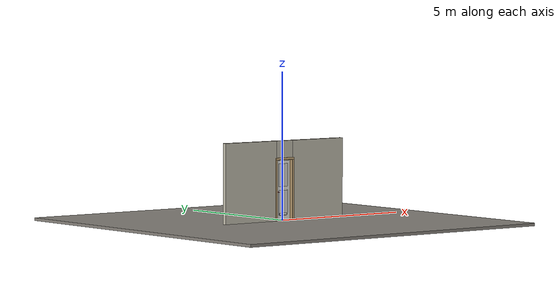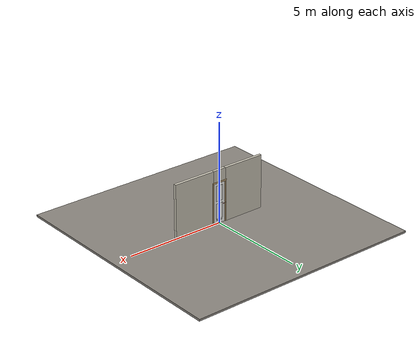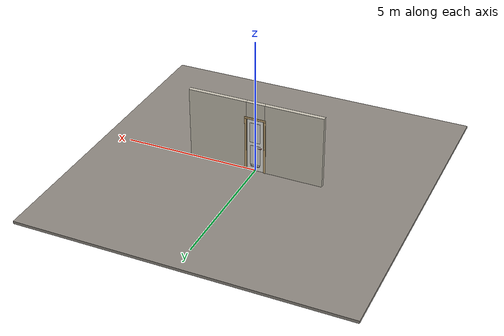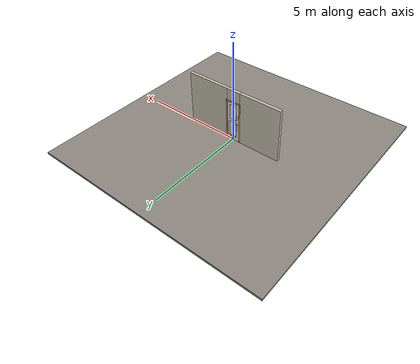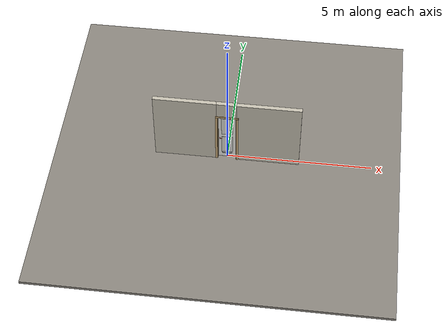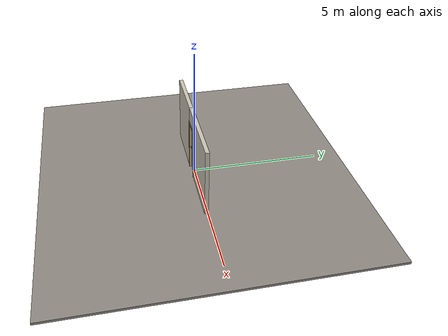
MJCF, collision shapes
<?xml version="1.0" ?>
<mujoco model="db0968_swing_single_full">
  <compiler angle="radian" meshdir="../../hardware" texturedir="../../textures" autolimits="true" inertiafromgeom="false"/>
  <option timestep="0.002" integrator="implicitfast" cone="elliptic" impratio="10" noslip_iterations="3">
    <flag multiccd="enable"/>
  </option>
  <size memory="16M"/>
  <default>
    <geom condim="4" solref="0.005 1" solimp="0.95 0.99 0.001"/>
    <joint solreflimit="0.005 1" solimplimit="0.95 0.99 0.001"/>
    <tendon solreflimit="0.005 1"/>
    <equality solref="0.002 1"/>
  </default>
  <visual>
    <headlight ambient="0.4 0.4 0.4" diffuse="0.7 0.7 0.7" specular="0.2 0.2 0.2"/>
    <quality shadowsize="4096"/>
    <map znear="0.01" zfar="60"/>
  </visual>
  <asset>
    <mesh name="hinge_96510cf394" file="hinge_96510cf394.obj"/>
    <mesh name="hinge_jamb_7fd4ca52b2" file="hinge_jamb_7fd4ca52b2.obj"/>
    <mesh name="lever_57205841c3" file="lever_57205841c3.obj"/>
    <material name="mat_floor" rgba="0.55 0.53 0.5 1" specular="0.2" shininess="0.15" reflectance="0"/>
    <material name="mat_wall" rgba="0.78 0.76 0.7 1" specular="0.2" shininess="0.1" reflectance="0"/>
    <material name="mat_leaf" rgba="0.93 0.93 0.91 1" specular="0.2" shininess="0.47" reflectance="0"/>
    <material name="mat_leaf_panel" rgba="0.856 0.856 0.837 1" specular="0.2" shininess="0.47" reflectance="0"/>
    <material name="mat_hinge" rgba="0.65 0.66 0.68 1" specular="0.74" shininess="0.5" reflectance="0.36"/>
    <material name="mat_op_black_matte_metal" rgba="0.05 0.05 0.05 1" specular="0.38" shininess="0.3" reflectance="0.12"/>
    <material name="mat_trim" rgba="0.85 0.66 0.3 1" specular="0.8" shininess="0.75" reflectance="0.4"/>
    <material name="mat_bolt" rgba="0.85 0.66 0.3 1" specular="0.8" shininess="0.75" reflectance="0.4"/>
    <material name="mat_frame" rgba="0.82 0.7 0.5 1" specular="0.2" shininess="0.45" reflectance="0"/>
    <material name="mat_vent" rgba="0.8 0.81 0.83 1" specular="0.8" shininess="0.6" reflectance="0.4"/>
    <texture name="skybox" type="skybox" builtin="gradient" rgb1="0.6 0.7 0.85" rgb2="0.9 0.92 0.95" width="256" height="256"/>
  </asset>
  <worldbody>
    <light name="sun" pos="1.5 -2.5 4" dir="-0.3 0.5 -0.8" directional="true" diffuse="0.8 0.8 0.8" specular="0.3 0.3 0.3" castshadow="true"/>
    <light name="fill" pos="-1.5 2.5 3" dir="0.3 -0.5 -0.7" directional="true" diffuse="0.35 0.35 0.4" castshadow="false"/>
    <camera name="robot_view" pos="0 -2.590187 1.734312" xyaxes="1 0 0 0 0.26963 0.962964" fovy="52"/>
    <camera name="far_view" pos="0 2.494187 1.734312" xyaxes="-1 0 0 0 -0.26963 0.962964" fovy="52"/>
    <camera name="iso" pos="-1.932062 -2.183438 2.141063" xyaxes="0.741536 -0.670913 0 0.242917 0.268487 0.932151" fovy="46"/>
    <camera name="detail_handle" pos="0.0315 -0.8725 1.245" xyaxes="0.97561 0.219512 0 -0.070934 0.315262 0.94635" fovy="38"/>
    <geom name="floor" type="box" size="6 6 0.05" pos="0 0 -0.05" material="mat_floor" group="0" contype="1" conaffinity="1" friction="0.8 0.005 0.0001" density="2400"/>
    <geom name="wall_left" type="box" size="1.07125 0.0725 1.35" pos="-1.42875 -0.048 1.35" material="mat_wall" group="0" contype="1" conaffinity="1" friction="0.6 0.005 0.0001" density="800"/>
    <geom name="wall_right" type="box" size="1.08625 0.0725 1.35" pos="1.41375 -0.048 1.35" material="mat_wall" group="0" contype="1" conaffinity="1" friction="0.6 0.005 0.0001" density="800"/>
    <geom name="wall_header" type="box" size="0.3425 0.0725 0.303" pos="-0.015 -0.048 2.397" material="mat_wall" group="0" contype="1" conaffinity="1" friction="0.6 0.005 0.0001" density="800"/>
    <geom name="hinge_0_jamb" type="mesh" mesh="hinge_jamb_7fd4ca52b2" pos="0.3055 0.0245 0.259" quat="0 0 0 1" material="mat_hinge" group="1" contype="0" conaffinity="0" density="7850"/>
    <geom name="hinge_1_jamb" type="mesh" mesh="hinge_jamb_7fd4ca52b2" pos="0.3055 0.0245 1.025" quat="0 0 0 1" material="mat_hinge" group="1" contype="0" conaffinity="0" density="7850"/>
    <geom name="hinge_2_jamb" type="mesh" mesh="hinge_jamb_7fd4ca52b2" pos="0.3055 0.0245 1.861" quat="0 0 0 1" material="mat_hinge" group="1" contype="0" conaffinity="0" density="7850"/>
    <geom name="jamb_hinge" type="box" size="0.0095 0.0725 1.0225" pos="0.318 -0.048 1.0225" material="mat_frame" group="0" contype="1" conaffinity="1" friction="0.6 0.005 0.0001" density="400"/>
    <geom name="strike_965_wall_n" type="box" size="0.0245 0.056325 0.0167" pos="-0.333 -0.064175 0.965" material="mat_frame" group="0" contype="1" conaffinity="1" friction="0.6 0.005 0.0001" density="400"/>
    <geom name="strike_965_wall_p" type="box" size="0.0245 0.008 0.0167" pos="-0.333 0.01585 0.965" material="mat_frame" group="0" contype="1" conaffinity="1" friction="0.6 0.005 0.0001" density="400"/>
    <geom name="strike_965_ramp" type="box" size="0.0245 0.01649 0.0167" pos="-0.337636 0.028673 0.965" quat="0.977148 0 0 0.212558" material="mat_frame" group="0" contype="1" conaffinity="1" friction="0.12 0.005 0.0001" density="400"/>
    <geom name="strike_965_back" type="box" size="0.01615 0.00785 0.0167" pos="-0.34135 0 0.965" material="mat_frame" group="0" contype="1" conaffinity="1" friction="0.6 0.005 0.0001" density="400"/>
    <geom name="jamb_strike_0" type="box" size="0.0245 0.0725 0.47415" pos="-0.333 -0.048 0.47415" material="mat_frame" group="0" contype="1" conaffinity="1" friction="0.6 0.005 0.0001" density="400"/>
    <geom name="jamb_strike_1" type="box" size="0.0245 0.0725 0.53165" pos="-0.333 -0.048 1.51335" material="mat_frame" group="0" contype="1" conaffinity="1" friction="0.6 0.005 0.0001" density="400"/>
    <geom name="jamb_head" type="box" size="0.3425 0.0725 0.0095" pos="-0.015 -0.048 2.0545" material="mat_frame" group="0" contype="1" conaffinity="1" friction="0.6 0.005 0.0001" density="400"/>
    <geom name="head_stud" type="box" size="0.3425 0.0725 0.015" pos="-0.015 -0.048 2.079" material="mat_wall" group="0" contype="1" conaffinity="1" friction="0.6 0.005 0.0001" density="500"/>
    <geom name="stop_hinge" type="box" size="0.0055 0.016 1.0225" pos="0.303 -0.034 1.0225" material="mat_frame" group="0" contype="1" conaffinity="1" friction="0.6 0.005 0.0001" density="400"/>
    <geom name="stop_strike" type="box" size="0.0055 0.016 1.0225" pos="-0.303 -0.034 1.0225" material="mat_frame" group="0" contype="1" conaffinity="1" friction="0.6 0.005 0.0001" density="400"/>
    <geom name="stop_head" type="box" size="0.3085 0.016 0.0055" pos="0 -0.034 2.0395" material="mat_frame" group="0" contype="1" conaffinity="1" friction="0.6 0.005 0.0001" density="400"/>
    <geom name="casing_l_n" type="box" size="0.035 0.008 1.032" pos="-0.3575 -0.1285 1.0225" material="mat_frame" group="2" contype="0" conaffinity="0" density="400"/>
    <geom name="casing_r_n" type="box" size="0.035 0.008 1.032" pos="0.3575 -0.1285 1.0225" material="mat_frame" group="2" contype="0" conaffinity="0" density="400"/>
    <geom name="casing_h_n" type="box" size="0.3925 0.008 0.035" pos="0 -0.1285 2.094" material="mat_frame" group="2" contype="0" conaffinity="0" density="400"/>
    <geom name="casing_l_p" type="box" size="0.035 0.008 1.032" pos="-0.3575 0.0325 1.0225" material="mat_frame" group="2" contype="0" conaffinity="0" density="400"/>
    <geom name="casing_r_p" type="box" size="0.035 0.008 1.032" pos="0.3575 0.0325 1.0225" material="mat_frame" group="2" contype="0" conaffinity="0" density="400"/>
    <geom name="casing_h_p" type="box" size="0.3925 0.008 0.035" pos="0 0.0325 2.094" material="mat_frame" group="2" contype="0" conaffinity="0" density="400"/>
    <site name="approach_point" pos="0 -1.5 0" quat="1 0 0 0" size="0.05" rgba="0.2 0.9 0.2 0.5" group="4"/>
    <site name="goal_point" pos="0 1.5 0" quat="1 0 0 0" size="0.05" rgba="0.2 0.9 0.2 0.5" group="4"/>
    <site name="door_plane_center" pos="0 0 1.0225" quat="1 0 0 0" size="0.02" rgba="0.2 0.9 0.2 0.5" group="4"/>
    <body name="leaf" pos="0.3085 0 0">
      <inertial pos="-0.304432 0.000177 1.003679" mass="34.087527" quat="0.49971 0.500556 -0.499432 0.500302" diaginertia="1.067681172 11.924020323 12.984257841"/>
      <joint name="leaf_hinge" type="hinge" axis="0 0 -1" pos="-0.003 0.0245 0" limited="true" range="0 2.268928" damping="0.100811" frictionloss="0.310009" armature="0.02"/>
      <geom name="leaf_slab" type="box" size="0.305 0.0175 1.016" pos="-0.308 0 1.025" material="mat_leaf" group="0" contype="1" conaffinity="1" friction="0.4 0.005 0.0001" density="1"/>
      <geom name="leaf_panel_0_n" type="box" size="0.195 0.003 0.38422" pos="-0.308 -0.0205 0.63674" material="mat_leaf_panel" group="1" contype="0" conaffinity="0" density="1"/>
      <geom name="leaf_panel_0_p" type="box" size="0.195 0.003 0.38422" pos="-0.308 0.0205 0.63674" material="mat_leaf_panel" group="1" contype="0" conaffinity="0" density="1"/>
      <geom name="leaf_panel_1_n" type="box" size="0.195 0.003 0.38422" pos="-0.308 -0.0205 1.53518" material="mat_leaf_panel" group="1" contype="0" conaffinity="0" density="1"/>
      <geom name="leaf_panel_1_p" type="box" size="0.195 0.003 0.38422" pos="-0.308 0.0205 1.53518" material="mat_leaf_panel" group="1" contype="0" conaffinity="0" density="1"/>
      <geom name="hinge_0" type="mesh" mesh="hinge_96510cf394" pos="-0.003 0.0245 0.259" quat="0 0 0 1" material="mat_hinge" group="1" contype="0" conaffinity="0" density="7850"/>
      <geom name="hinge_1" type="mesh" mesh="hinge_96510cf394" pos="-0.003 0.0245 1.025" quat="0 0 0 1" material="mat_hinge" group="1" contype="0" conaffinity="0" density="7850"/>
      <geom name="hinge_2" type="mesh" mesh="hinge_96510cf394" pos="-0.003 0.0245 1.861" quat="0 0 0 1" material="mat_hinge" group="1" contype="0" conaffinity="0" density="7850"/>
      <geom name="leaf_latch_bolt_faceplate" type="box" size="0.0006 0.01235 0.0267" pos="-0.6124 0 0.965" material="mat_bolt" group="1" contype="0" conaffinity="0" density="8500"/>
      <geom name="louver_vent_stile_n_l" type="box" size="0.012 0.002 0.137" pos="-0.47 -0.0195 0.314" material="mat_vent" group="2" contype="0" conaffinity="0" density="2700"/>
      <geom name="louver_vent_stile_n_r" type="box" size="0.012 0.002 0.137" pos="-0.146 -0.0195 0.314" material="mat_vent" group="2" contype="0" conaffinity="0" density="2700"/>
      <geom name="louver_vent_rail_n_b" type="box" size="0.15 0.002 0.012" pos="-0.308 -0.0195 0.177" material="mat_vent" group="2" contype="0" conaffinity="0" density="2700"/>
      <geom name="louver_vent_rail_n_t" type="box" size="0.15 0.002 0.012" pos="-0.308 -0.0195 0.451" material="mat_vent" group="2" contype="0" conaffinity="0" density="2700"/>
      <geom name="louver_vent_stile_p_l" type="box" size="0.012 0.002 0.137" pos="-0.47 0.0195 0.314" material="mat_vent" group="2" contype="0" conaffinity="0" density="2700"/>
      <geom name="louver_vent_stile_p_r" type="box" size="0.012 0.002 0.137" pos="-0.146 0.0195 0.314" material="mat_vent" group="2" contype="0" conaffinity="0" density="2700"/>
      <geom name="louver_vent_rail_p_b" type="box" size="0.15 0.002 0.012" pos="-0.308 0.0195 0.177" material="mat_vent" group="2" contype="0" conaffinity="0" density="2700"/>
      <geom name="louver_vent_rail_p_t" type="box" size="0.15 0.002 0.012" pos="-0.308 0.0195 0.451" material="mat_vent" group="2" contype="0" conaffinity="0" density="2700"/>
      <geom name="louver_vent_slat_0" type="box" size="0.15 0.0015 0.015" pos="-0.308 0 0.209833" quat="0.965926 -0.258819 0 0" material="mat_vent" group="2" contype="0" conaffinity="0" density="2700"/>
      <geom name="louver_vent_slat_1" type="box" size="0.15 0.0015 0.015" pos="-0.308 0 0.2515" quat="0.965926 -0.258819 0 0" material="mat_vent" group="2" contype="0" conaffinity="0" density="2700"/>
      <geom name="louver_vent_slat_2" type="box" size="0.15 0.0015 0.015" pos="-0.308 0 0.293167" quat="0.965926 -0.258819 0 0" material="mat_vent" group="2" contype="0" conaffinity="0" density="2700"/>
      <geom name="louver_vent_slat_3" type="box" size="0.15 0.0015 0.015" pos="-0.308 0 0.334833" quat="0.965926 -0.258819 0 0" material="mat_vent" group="2" contype="0" conaffinity="0" density="2700"/>
      <geom name="louver_vent_slat_4" type="box" size="0.15 0.0015 0.015" pos="-0.308 0 0.3765" quat="0.965926 -0.258819 0 0" material="mat_vent" group="2" contype="0" conaffinity="0" density="2700"/>
      <geom name="louver_vent_slat_5" type="box" size="0.15 0.0015 0.015" pos="-0.308 0 0.418167" quat="0.965926 -0.258819 0 0" material="mat_vent" group="2" contype="0" conaffinity="0" density="2700"/>
      <site name="leaf_edge_mid" pos="-0.613 0 1.016" quat="1 0 0 0" size="0.02" rgba="0.2 0.9 0.2 0.5" group="4"/>
      <body name="leaf_handle" pos="-0.553 0 0.965">
        <inertial pos="0.018609 0 0" mass="0.798454" quat="0.707107 0 0 -0.707107" diaginertia="0.001003601 0.002236545 0.003135681"/>
        <joint name="leaf_handle_hinge" type="hinge" axis="0 1 0" limited="true" range="0 0.87" damping="0.212416" frictionloss="0.042" stiffness="1" springref="-0.35" armature="0.01"/>
        <geom name="leaf_handle_spindle" type="cylinder" size="0.006 0.0255" pos="0 0 0" quat="0.707107 -0.707107 0 0" material="mat_op_black_matte_metal" group="1" contype="0" conaffinity="0" density="7850"/>
        <geom name="leaf_handle_lever_n" type="mesh" mesh="lever_57205841c3" pos="0 -0.0175 0" quat="0 0 -0.707107 0.707107" material="mat_op_black_matte_metal" group="1" contype="0" conaffinity="0" density="3000"/>
        <geom name="leaf_handle_lever_col_n" type="capsule" size="0.007 0.053" pos="0.06 -0.0725 0" quat="0.707107 0 0.707107 0" material="mat_op_black_matte_metal" group="3" contype="1" conaffinity="1" rgba="0.8 0.3 0.3 0.25" friction="0.7 0.01 0.0001" density="3000"/>
        <geom name="leaf_handle_hub_col_n" type="cylinder" size="0.012 0.022" pos="0 -0.0475 0" quat="0.707107 -0.707107 0 0" material="mat_op_black_matte_metal" group="3" contype="1" conaffinity="1" rgba="0.8 0.3 0.3 0.25" friction="0.6 0.005 0.0001" density="3000"/>
        <geom name="leaf_handle_lever_p" type="mesh" mesh="lever_57205841c3" pos="0 0.0175 0" quat="0 0 0.707107 0.707107" material="mat_op_black_matte_metal" group="1" contype="0" conaffinity="0" density="3000"/>
        <geom name="leaf_handle_lever_col_p" type="capsule" size="0.007 0.053" pos="0.06 0.0725 0" quat="0.707107 0 0.707107 0" material="mat_op_black_matte_metal" group="3" contype="1" conaffinity="1" rgba="0.8 0.3 0.3 0.25" friction="0.7 0.01 0.0001" density="3000"/>
        <geom name="leaf_handle_hub_col_p" type="cylinder" size="0.012 0.022" pos="0 0.0475 0" quat="0.707107 -0.707107 0 0" material="mat_op_black_matte_metal" group="3" contype="1" conaffinity="1" rgba="0.8 0.3 0.3 0.25" friction="0.6 0.005 0.0001" density="3000"/>
        <site name="leaf_handle_grip_n" pos="0.096 -0.0725 0" quat="1 0 0 0" size="0.012" rgba="0.2 0.9 0.2 0.5" group="4"/>
        <site name="leaf_handle_grip_p" pos="0.096 0.0725 0" quat="1 0 0 0" size="0.012" rgba="0.2 0.9 0.2 0.5" group="4"/>
      </body>
      <body name="leaf_latch_bolt" pos="-0.613 0 0.965">
        <inertial pos="0.00865 0 0" mass="0.041419" quat="0.92388 0.382683 0 0" diaginertia="0.000000798 0.000005598 0.000005598"/>
        <joint name="leaf_latch_bolt_slide" type="slide" axis="1 0 0" limited="true" range="0 0.0127" damping="2" frictionloss="0.3" stiffness="300" springref="-0.008333" armature="0.1"/>
        <geom name="leaf_latch_bolt_capsule" type="capsule" size="0.00635 0.015" pos="0.00865 0 0" quat="0.707107 0 -0.707107 0" material="mat_bolt" group="0" contype="1" conaffinity="1" friction="0.2 0.005 0.0001" density="8500"/>
      </body>
    </body>
  </worldbody>
  <tendon>
    <fixed name="leaf_latch_bolt_coupling" limited="true" range="0 10">
      <joint joint="leaf_latch_bolt_slide" coef="1"/>
      <joint joint="leaf_handle_hinge" coef="-0.015679"/>
    </fixed>
  </tendon>
  <sensor>
    <jointpos name="leaf_hinge_pos" joint="leaf_hinge"/>
    <jointvel name="leaf_hinge_vel" joint="leaf_hinge"/>
    <jointpos name="leaf_handle_hinge_pos" joint="leaf_handle_hinge"/>
    <jointvel name="leaf_handle_hinge_vel" joint="leaf_handle_hinge"/>
    <jointpos name="leaf_latch_bolt_slide_pos" joint="leaf_latch_bolt_slide"/>
    <jointvel name="leaf_latch_bolt_slide_vel" joint="leaf_latch_bolt_slide"/>
  </sensor>
</mujoco>
